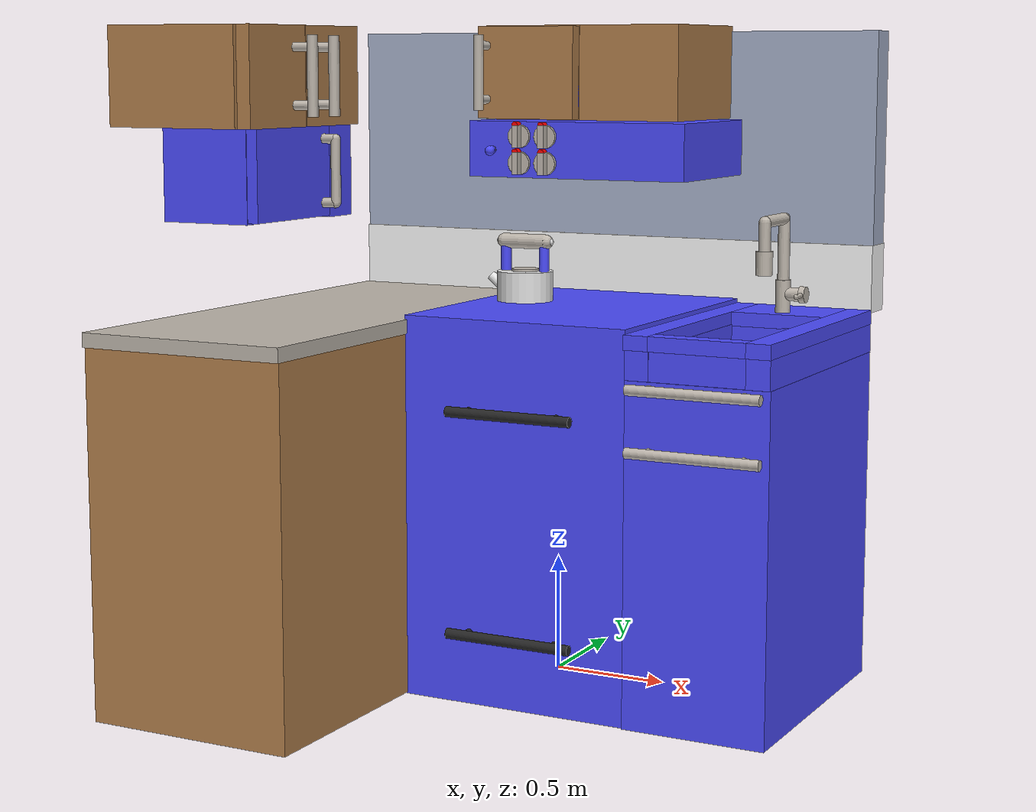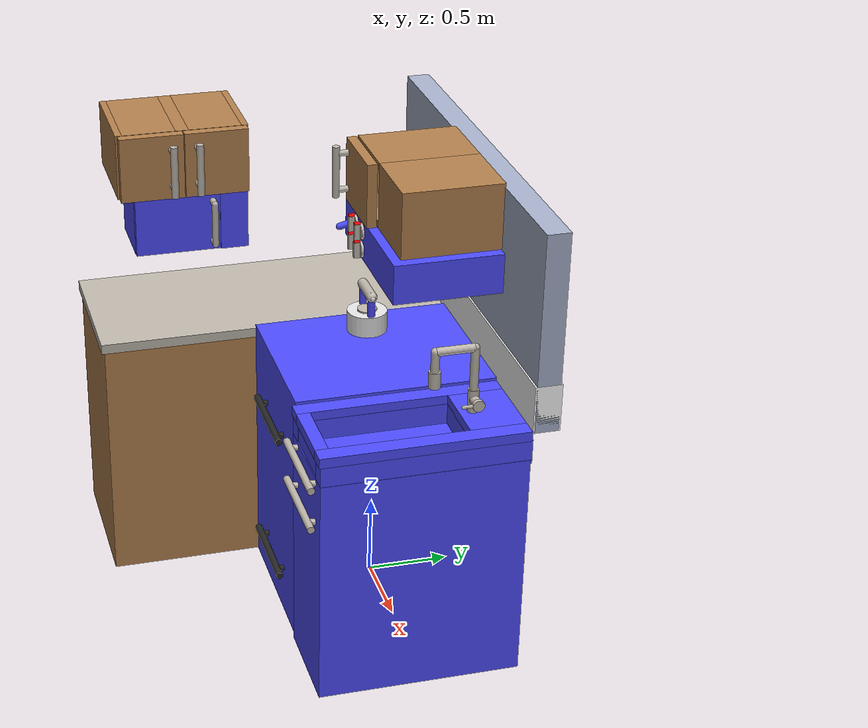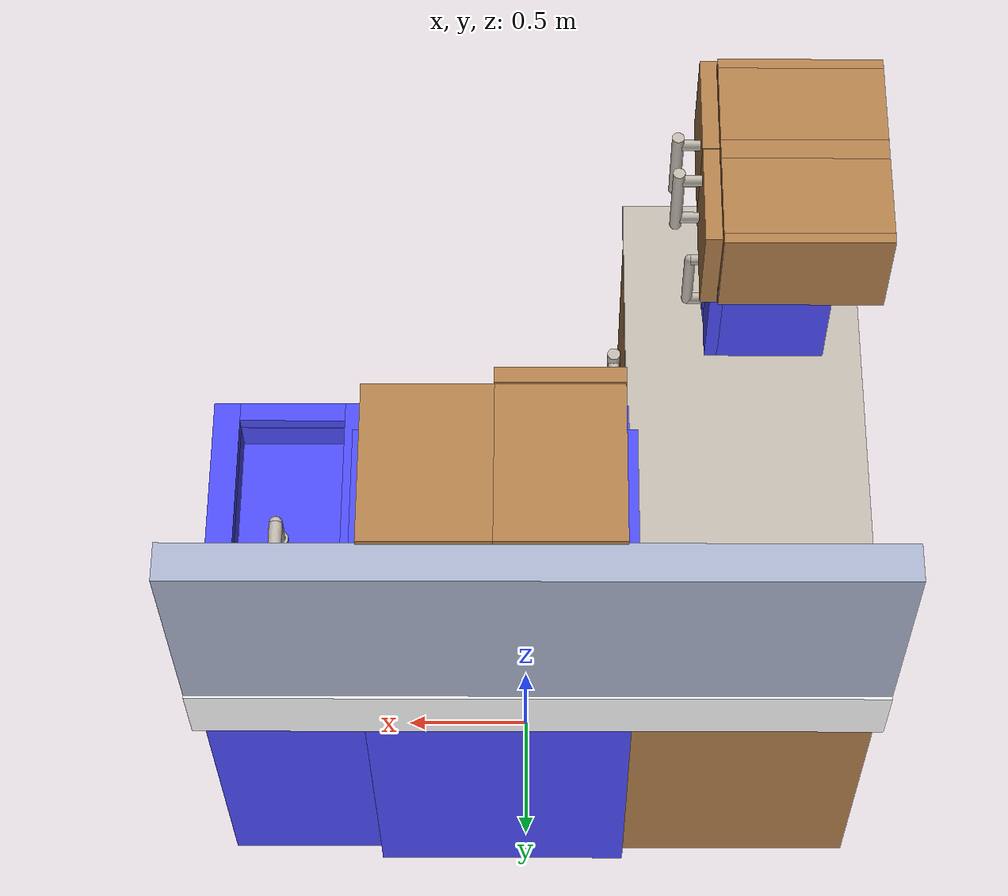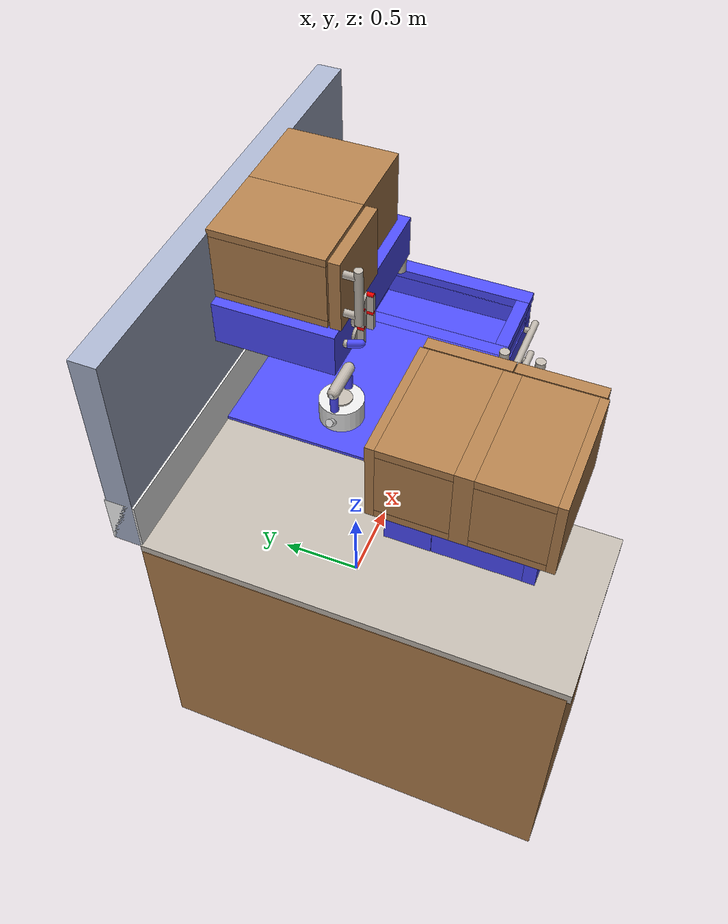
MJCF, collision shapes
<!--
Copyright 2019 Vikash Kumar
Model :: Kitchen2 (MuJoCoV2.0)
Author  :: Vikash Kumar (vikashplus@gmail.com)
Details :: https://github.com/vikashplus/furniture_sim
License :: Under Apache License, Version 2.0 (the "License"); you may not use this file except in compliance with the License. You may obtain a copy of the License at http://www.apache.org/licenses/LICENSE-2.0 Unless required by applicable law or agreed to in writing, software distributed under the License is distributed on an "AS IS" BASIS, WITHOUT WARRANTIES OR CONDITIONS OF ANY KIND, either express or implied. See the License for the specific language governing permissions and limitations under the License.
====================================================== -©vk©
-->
<mujoco model="kitchen">
    <compiler angle="radian" inertiafromgeom='auto' inertiagrouprange='4 5' meshdir='..' texturedir='..'/>
    <visual>
        <headlight diffuse=".9 .9 .9"/>
    </visual>
    <include file="../../furniture_sim/oven/oven_asset.xml"/>
    <include file="../../furniture_sim/counters/counters_asset.xml"/>
    <include file="../../furniture_sim/backwall/backwall_asset.xml"/>
    <include file="../../furniture_sim/slidecabinet/slidecabinet_asset.xml"/>
    <include file="../../furniture_sim/hingecabinet/hingecabinet_asset.xml"/>
    <include file="../../furniture_sim/microwave/microwave_asset.xml"/>
    <include file="../../furniture_sim/kettle/kettle_asset.xml"/>
    <worldbody>
        <body name="kitchen" pos="0 0 0">

            <body name="sink" pos="0 0 0">
                <include file="../../furniture_sim/counters/sink_counter_body.xml"/>
            </body>
            <body name="island" pos="0 0 0">
                <include file="../../furniture_sim/counters/box_counter_body.xml"/>
            </body>
            <body name="oven" pos="0 0 0">
                <include file="../../furniture_sim/oven/oven_body.xml"/>
            </body>
            <body name="backwall" pos="0 0 0">
                <include file="../../furniture_sim/backwall/backwall_body.xml"/>
            </body>
            <body name="slidecabinet" pos="0.098 0.28 2.61">
                <include file="../../furniture_sim/slidecabinet/slidecabinet_body.xml"/>
            </body>
            <body name="hingecabinet" pos="-1.0 -1.0 2.6" euler="0 0 1.57">
                <include file="../../furniture_sim/hingecabinet/hingecabinet_body.xml"/>
            </body>
            <body name="microwave" pos="-0.892 -0.96 2.025" euler="0 0 1.57">
                <include file="../../furniture_sim/microwave/microwave_body0.xml"/>
            </body>
        </body>
        <body name="kettle" pos="-0.169 0 1.626">
            <freejoint/>
            <include file="../../furniture_sim/kettle/kettle_body1.xml"/>
        </body>
    </worldbody>

</mujoco>

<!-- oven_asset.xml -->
<mujocoinclude>
    <compiler inertiafromgeom="auto" inertiagrouprange="4 4" angle="radian"/>

    <asset>
        <mesh file="../furniture_sim/oven/meshes/hood.stl" name="hood"/>
        <mesh file="../furniture_sim/oven/meshes/lightswitch.stl" name="lightswitch"/>
        <mesh file="../furniture_sim/oven/meshes/lightswitchbase.stl" name="lightswitchbase"/>
        <mesh file="../furniture_sim/oven/meshes/knob.stl" name="knob"/>
        <mesh file="../furniture_sim/oven/meshes/stoverim.stl" name="stoverim"/>
        <mesh file="../furniture_sim/oven/meshes/burnerplate.stl" name="burnerplate"/>
        <mesh file="../furniture_sim/oven/meshes/ovenhandle.stl" name="ovenhandle"/>
        <mesh file="../furniture_sim/oven/meshes/oven.stl" name="oven"/>
        <mesh file="../furniture_sim/oven/meshes/oventop.stl" name="oventop"/>
        <mesh file="../furniture_sim/oven/meshes/ovenwindow.stl" name="ovenwindow"/>

        <texture name="T_oven_wood" type="cube" height="1" width="1" file="../furniture_sim/common/textures/wood0.png"/>
        <texture name="T_oven_metal" type="cube" height="1" width="1" file="../furniture_sim/common/textures/metal0.png"/>

        <material name="oven_wood" texture="T_oven_wood" texrepeat="3 3" reflectance="0.7" shininess=".4" texuniform="false"/>
        <material name="oven_metal" rgba="1 1 1 1" texture="T_oven_metal" texrepeat="3 3" reflectance="1" shininess="1" texuniform="false"/>
        <material name="oven_black" rgba=".15 .15 .15 1" reflectance=".2" shininess=".2" />
        <material name="oven_burner" rgba="2 0 0 1" reflectance=".2" shininess=".2" />
        <material name="oven_block" rgba=".1 .1 .1 1"/>
        <material name="oven_collision_blue" rgba="0.3 0.3 1.0 0.5" shininess="0" specular="0"/>
    </asset>

    <default>
        <default class="oven">
            <joint armature="0.001" damping="2" limited="true"/>
            <geom conaffinity="0" contype="0" group="1" material="oven_metal" type="mesh"/>
            <light directional="false" castshadow="true" attenuation="0.03 0.03 0.03" cutoff="100" exponent="25" diffuse=".7 .65 .65" specular=".3 .3 .3"/>
            <default class="oven_collision">
                <geom conaffinity="1" condim="3" contype="0" group="4" margin="0.001" material="oven_collision_blue" type="mesh"/>
            </default>
        </default>
    </default>

    <equality>
        <joint polycoef="0 174 0 0 0" joint1="knob1_joint" joint2="burner1_joint"/>
        <joint polycoef="0 174 0 0 0" joint1="knob2_joint" joint2="burner2_joint"/>
        <joint polycoef="0 174 0 0 0" joint1="knob3_joint" joint2="burner3_joint"/>
        <joint polycoef="0 174 0 0 0" joint1="knob4_joint" joint2="burner4_joint"/>
        <joint polycoef="0 14 0 0 0" joint1="lightswitch_joint" joint2="light_joint"/>
    </equality>

    <sensor>
        <jointpos name='knob1_joint' joint= 'knob1_joint'/>
        <jointpos name='knob2_joint' joint= 'knob2_joint'/>
        <jointpos name='knob3_joint' joint= 'knob3_joint'/>
        <jointpos name='knob4_joint' joint= 'knob4_joint'/>
        <jointpos name='lightswitch_joint' joint= 'lightswitch_joint'/>
    </sensor>

</mujocoinclude>

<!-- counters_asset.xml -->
<mujocoinclude>
    <compiler inertiafromgeom="auto" inertiagrouprange="4 4" angle="radian"/>

    <asset>
        <mesh file="../furniture_sim/counters/meshes/cabinetdrawer.stl" name="cabinetdrawer"/>
        <mesh file="../furniture_sim/counters/meshes/cabinethandle.stl" name="cabinethandle"/>
        <mesh file="../furniture_sim/counters/meshes/cabinetbase.stl" name="cabinetbase"/>
        <mesh file="../furniture_sim/counters/meshes/countertop.stl" name="countertop"/>
        <mesh file="../furniture_sim/counters/meshes/faucet.stl" name="faucet"/>

        <texture name="T_counter_metal" type="cube" height="1" width="1" file="../furniture_sim/common/textures/metal0.png" />
        <texture name="T_counter_marble" type="cube" height="1" width="1" file="../furniture_sim/common/textures/stone2.png" />
        <texture name="T_counter_wood" type="cube" height="2" width="2" file="../furniture_sim/common/textures/wood1.png"/>

        <material name="counter_metal" rgba="1 1 1 1" texture="T_counter_metal" texrepeat="3 3" reflectance=".5" shininess="1" texuniform="false" />
        <material name="counter_marble"  texture="T_counter_marble" texrepeat="1 1" reflectance=".2" shininess="1" texuniform="false" />
        <material name="counter_black" rgba=".2 .2 .2 1" reflectance="1" shininess="1"  />
        <material name="counter_blue" texture="T_counter_wood" rgba="1 1 1 1" reflectance="1" shininess="1" texuniform="false"/>
        <material name="counter_collision_blue" rgba="0.3 0.3 1.0 0.5" shininess="0" specular="0" />

    </asset>

    <default>
        <default class="counters">
            <joint damping="2" frictionloss="2" armature=".01" limited="true"/>
            <geom conaffinity="0" contype="0" group="1" material="counter_metal" type="mesh"/>
            <default class="counter_collision">
                <geom conaffinity="1" condim="3" contype="0" group="4" margin="0.001" material="counter_collision_blue"/>
            </default>
        </default>
    </default>

</mujocoinclude>

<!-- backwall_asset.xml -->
<mujocoinclude>
    <compiler inertiafromgeom="auto" inertiagrouprange="4 4" angle="radian"/>

    <asset>
        <texture name="T_wall_marble" type="cube" height="1" width="1" file="../furniture_sim/common/textures/stone0.png"/>
        <texture name="T_wall_metal" type="cube" height="1" width="1" file="../furniture_sim/common/textures/metal0.png"/>

        <material name="wall_white" rgba="1 1 1 1" reflectance="0" shininess="0"/>
        <material name="wall_blue" rgba=".66 .7 .8 1" reflectance="0" shininess="0"/>
        <material name="wall_collision_blue" rgba="0.3 0.3 1.0 0.5" shininess="0" specular="0"/>
    </asset>

    <default>
        <default class="backwall">
            <geom conaffinity="0" contype="0" group="1" material="wall_blue"/>
            <default class="wall_collision">
                <geom conaffinity="1" condim="3" contype="0" group="4" margin="0.001" material="wall_collision_blue"/>
            </default>
        </default>
    </default>

</mujocoinclude>

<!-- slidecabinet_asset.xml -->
<mujocoinclude>
    <compiler inertiafromgeom="auto" inertiagrouprange="4 4" angle="radian"/>

    <asset>
        <texture name="T_slide_metal" type="cube" height="1" width="1" file="../furniture_sim/common/textures/metal0.png"/>
        <texture name="T_slide_wood" type="cube" height="1" width="1" file="../furniture_sim/common/textures/wood1.png"/>

        <material name="M_slide_metal" texture="T_slide_metal" texrepeat="3 3" reflectance="0.7" shininess=".4" texuniform="false"/>
        <material name="M_slide_blue" texture="T_slide_wood" rgba="1 1 1 1" reflectance="0.7" shininess=".4" texuniform="false"/>
        <material name="slide_collision_blue" rgba="0.3 0.3 1.0 0.5" shininess="0" specular="0"/>
    </asset>
    <default>
        <default class="slidecabinet">
            <joint damping="2" frictionloss="2" armature=".01" limited="true"/>
            <geom conaffinity="0" contype="0" group="1" material="M_slide_blue" type="mesh"/>
            <default class="slide_collision">
                <geom conaffinity="1" condim="3" contype="0" group="4" margin="0.001" material="slide_collision_blue"/>
            </default>
        </default>
    </default>

    <sensor>
        <jointpos name="slidedoor_joint" joint="slidedoor_joint"/>
    </sensor>

</mujocoinclude>

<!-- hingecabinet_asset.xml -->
<mujocoinclude>

    <compiler inertiafromgeom="auto" inertiagrouprange="4 4" angle="radian"/>

    <asset>
        <texture name="T_hinge_wood" type="cube" height="1" width="1" file="../furniture_sim/common/textures/wood1.png"/>
        <texture name="T_hinge_metal" type="cube" height="1" width="1" file="../furniture_sim/common/textures/metal0.png"/>

        <material name="M_hinge_wood" texture="T_hinge_wood" texrepeat="3 3" reflectance="0.7" shininess=".4" texuniform="false"/>
        <material name="M_hinge_metal" texture="T_hinge_metal" texrepeat="3 3" reflectance="0.7" shininess=".4" texuniform="false"/>
        <material name="M_hinge_blue" texture="T_hinge_wood" rgba="1 1 1 1" reflectance="0.7" shininess=".4" texuniform="false"/>
        <material name="hinge_collision_blue" rgba="0.3 0.3 1.0 0.5" shininess="0" specular="0"/>
    </asset>

    <default>
        <default class="hingecabinet">
            <joint damping="2" frictionloss="2" armature=".01" limited="true"/>
            <geom conaffinity="0" contype="0" group="1" material="M_hinge_wood" type="mesh"/>
            <default class="hinge_collision">
                <geom conaffinity="1" condim="3" contype="0" group="4" margin="0.001" material="hinge_collision_blue" solimp=".8 .9 .01" solref=".02 1"/>
            </default>
        </default>
    </default>

    <sensor>
        <jointpos name="leftdoorhinge" joint="leftdoorhinge"/>
        <jointpos name="rightdoorhinge" joint="rightdoorhinge"/>
    </sensor>

</mujocoinclude>

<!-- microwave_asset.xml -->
<mujocoinclude>
    <compiler inertiafromgeom="auto" inertiagrouprange="4 4" angle="radian"/>

    <asset>
        <mesh file="../furniture_sim/microwave/meshes/micro.stl" name="micro"/>
        <mesh file="../furniture_sim/microwave/meshes/microdoor.stl" name="microdoor"/>
        <mesh file="../furniture_sim/microwave/meshes/microbutton.stl" name="microbutton"/>
        <mesh file="../furniture_sim/microwave/meshes/microfeet.stl" name="microfeet"/>
        <mesh file="../furniture_sim/microwave/meshes/microhandle.stl" name="microhandle"/>
        <mesh file="../furniture_sim/microwave/meshes/microwindow.stl" name="microwindow"/>

        <texture name="T_micro_metal" type="cube" height="1" width="1" file="../furniture_sim/common/textures/metal0.png"/>

        <material name="micro_metal" rgba="1 1 1 1" texture="T_micro_metal" texrepeat="3 3" reflectance="1" shininess="1" texuniform="false"/>
        <material name="micro_black" rgba=".2 .2 .2 1" reflectance="1" shininess="1"/>
        <material name="micro_white" rgba=".8 .8 .82 1" reflectance="1" shininess="1"/>
        <material name="micro_window" rgba=".4 .4 .4 .25" reflectance="1" shininess="1"/>
        <material name="micro_collision_blue" rgba="0.3 0.3 1.0 0.5" shininess="0" specular="0"/>
    </asset>

    <default>
        <default class="microwave">
            <joint damping="2" frictionloss="2" armature=".01" limited="true"/>
            <geom conaffinity="0" contype="0" group="1" material="micro_black" type="mesh"/>
            <default class="micro_collision">
                <geom conaffinity="1" condim="3" contype="0" group="4" margin="0.001" material="micro_collision_blue" solimp=".8 .9 .01" solref=".02 1"/>
            </default>
        </default>
    </default>

    <sensor>
        <jointpos name="micro0joint" joint="micro0joint"/>
    </sensor>

</mujocoinclude>

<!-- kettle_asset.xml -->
<mujocoinclude>
    <compiler inertiafromgeom="auto" inertiagrouprange="4 4" angle="radian"/>

    <asset>
        <mesh file="../furniture_sim/kettle/meshes/kettle.stl" name="kettle"/>
        <mesh file="../furniture_sim/kettle/meshes/kettlehandle.stl" name="kettlehandle"/>

        <texture name="T_kettle_metal" type="cube" height="1" width="1" file="../furniture_sim/common/textures/metal0.png" />
        <texture name="T_kettle_wood" type="cube" height="1" width="1" file="../furniture_sim/common/textures/wood1.png" />

        <material name="kettle_wood" rgba="1 1 1 1" texture="T_kettle_wood" texrepeat="3 3" reflectance="1" shininess="1" texuniform="false" />
        <material name="kettle_metal" rgba="1 1 1 1" texture="T_kettle_metal" texrepeat="3 3" reflectance="1" shininess="1" texuniform="false" />
        <material name="kettle_Rmetal" rgba="1 .1 .1 1" texture="T_kettle_metal" texrepeat="3 3" reflectance="1" shininess="1" texuniform="false" />
        <material name="kettle_Bmetal" rgba=".1 .1 1 1" texture="T_kettle_metal" texrepeat="3 3" reflectance="1" shininess="1" texuniform="false" />
        <material name="kettle_white" rgba=".9 .9 .9 1" reflectance="1" shininess="1" />
        <material name="kettle_collision_blue" rgba="0.3 0.3 1.0 0.5" shininess="0" specular="0" />
    </asset>

    <default>
        <default class="kettle">
            <joint damping="2" frictionloss="2" armature=".01" limited="true" />
            <geom conaffinity="0" contype="0" group="1" material="kettle_white" type="mesh"/>
            <default class="kettle_collision">
                <geom conaffinity="1" condim="4" contype="1" group="4" margin="0.001" material="kettle_collision_blue" solimp=".8 .9 .01" solref=".02 1" type="mesh"/>
            </default>
        </default>
    </default>
</mujocoinclude>

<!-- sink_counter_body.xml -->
<mujocoinclude>
    <body name="sink_counter" childclass="counters">
        <geom material="counter_blue" mesh="cabinetbase"/>
        <geom material="counter_marble" mesh="countertop"/>
        <geom mesh="faucet" pos="0.904 -0.172 1.511"/>
        <geom pos="0.9 0.085 1.83" size="0.035 0.05" type="cylinder"/>
        <geom pos="0.9 0.085 1.92" size="0.025 0.08" type="capsule"/>
        <geom euler="1.57 0 0" pos="0.9 0.2 2" size="0.025 0.11" type="capsule"/>
        <geom pos="0.9 0.317 1.8" size="0.025 0.2" type="capsule"/>
        <geom pos="0.9 0.317 1.67" size="0.032 0.07" type="cylinder"/>
        <geom pos="0.947 0.318 1.68" euler="0 1.57 0" size="0.029 0.03" type="cylinder"/>
        <geom pos="0.99 0.318 1.68" euler="0 1.57 0" size="0.035 0.013 " type="cylinder"/>
        <geom euler="1.57 0 0" pos="0.99 0.26 1.68" size="0.01 0.03" type="capsule"/>
        <geom euler="0 1.57 0" pos="0.909 -0.695 1.39" size="0.022 0.28" type="cylinder"/>
        <geom euler="1.57 0 0" pos="0.71 -0.665 1.39" size="0.018 0.03" type="cylinder"/>
        <geom euler="1.57 0 0" pos="1.108 -0.665 1.39" size="0.018 0.03" type="cylinder"/>
        <geom euler="0 1.57 0" pos="0.909 -0.695 1.14" size="0.022 0.28" type="cylinder"/>
        <geom euler="1.57 0 0" pos="0.71 -0.665 1.14" size="0.018 0.03" type="cylinder"/>
        <geom euler="1.57 0 0" pos="1.108 -0.665 1.14" size="0.018 0.03" type="cylinder"/>

        <geom class="counter_collision" euler="0 1.57 0" pos="0.909 -0.695 1.39" size="0.022 0.28" type="cylinder" mass=".1"/>
        <geom class="counter_collision" euler="1.57 0 0" pos="0.71 -0.665 1.39" size="0.018 0.03" type="cylinder" mass=".02"/>
        <geom class="counter_collision" euler="1.57 0 0" pos="1.108 -0.665 1.39" size="0.018 0.03" type="cylinder" mass=".02"/>
        <geom class="counter_collision" euler="0 1.57 0" pos="0.909 -0.695 1.14" size="0.022 0.28" type="cylinder" mass=".1"/>
        <geom class="counter_collision" euler="1.57 0 0" pos="0.71 -0.665 1.14" size="0.018 0.03" type="cylinder" mass=".02"/>
        <geom class="counter_collision" euler="1.57 0 0" pos="1.108 -0.665 1.14" size="0.018 0.03" type="cylinder" mass=".02"/>
        <geom class="counter_collision" pos="0.907 -0.045 0.71" size="0.304 0.606 0.71" type="box" mass="3"/>
        <geom class="counter_collision" pos="1.159 -0.045 1.57" size="0.051 0.611 0.03" type="box" mass=".2"/>
        <geom class="counter_collision" pos="0.649 -0.045 1.57" size="0.051 0.611 0.03" type="box" mass=".2"/>
        <geom class="counter_collision" pos="0.904 0.4 1.57" size="0.204 0.165 0.03" type="box" mass=".2"/>
        <geom class="counter_collision" pos="0.904 -0.617 1.57" size="0.204 0.039 0.03" type="box" mass=".2"/>
        <geom class="counter_collision" pos="1.158 -0.04 1.47" size="0.05 0.61 0.076" type="box" mass=".2"/>
        <geom class="counter_collision" pos="0.652 -0.04 1.47" size="0.05 0.61 0.076" type="box" mass=".2"/>
        <geom class="counter_collision" pos="0.904 0.401 1.47" size="0.204 0.166 0.076" type="box" mass=".2"/>
        <geom class="counter_collision" pos="0.904 -0.611 1.47" size="0.206 0.034 0.076" type="box" mass=".2"/>
        <geom class="counter_collision" pos="0.9 0.085 1.83" size="0.035 0.05" type="cylinder" mass=".02"/>
        <geom class="counter_collision" pos="0.9 0.085 1.92" size="0.025 0.08" type="capsule" mass=".02"/>
        <geom class="counter_collision" euler="1.57 0 0" pos="0.9 0.2 2" size="0.025 0.11" type="capsule" mass=".02"/>
        <geom class="counter_collision" pos="0.9 0.317 1.8" size="0.025 0.2" type="capsule" mass=".02"/>
        <geom class="counter_collision" pos="0.9 0.317 1.67" size="0.032 0.07" type="cylinder" mass=".02"/>
        <geom class="counter_collision" pos="0.947 0.318 1.68" euler="0 1.57 0" size="0.029 0.03" type="cylinder" mass=".02"/>
        <geom class="counter_collision" pos="0.99 0.318 1.68" euler="0 1.57 0" size="0.035 0.013 " type="cylinder" mass=".02"/>
        <geom class="counter_collision" euler="1.57 0 0" pos="0.99 0.26 1.68" size="0.01 0.03" type="capsule" mass=".02"/>
    </body>
</mujocoinclude>

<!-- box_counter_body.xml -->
<mujocoinclude>
    <body name="box_counter" childclass="counters">
        <geom material="counter_marble" pos="-0.855 -0.508 1.57" size="0.463 1.08 0.03" type="box"/>
        <geom material="counter_blue" pos="-0.86 -0.5 0.78" size="0.46 1.07 0.777" type="box"/>

        <geom class="counter_collision" pos="-0.86 -0.5 0.78" size="0.46 1.07 0.777" type="box" mass="5"/>
        <geom class="counter_collision" pos="-0.855 -0.508 1.57" size="0.463 1.08 0.03" type="box" mass=".5"/>
    </body>
</mujocoinclude>

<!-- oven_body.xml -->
<mujocoinclude>
    <light class="oven" name="ovenlighta" pos="0 .2 2.5" dir="0 -.02 -.1" attenuation="0.05 0.05 0.05" cutoff="75" diffuse=".7 .65 .65" specular=".3 .3 .3"/>

    <body name="ovenroot" childclass="oven" pos="0.115 -0.2921 0.9834">
        <geom material="oven_black" mesh="burnerplate" pos="-0.24 -0.119 0.629"/>
        <geom material="oven_black" mesh="burnerplate" pos="-0.237 0.322 0.629"/>
        <geom material="oven_black" mesh="burnerplate" pos="0.204 0.322 0.629"/>
        <geom material="oven_black" mesh="burnerplate" pos="0.206 -0.119 0.629"/>
        <geom material="oven_black" euler="1.57 0 0" pos="-.215 -0.36 -0.682" size="0.018 0.03" type="cylinder"/>
        <geom material="oven_black" euler="1.57 0 0" pos=".184 -0.36 -0.682" size="0.018 0.03" type="cylinder"/>
        <geom material="oven_black" euler="0 1.57 0" pos="-0.015 -0.39 -0.682" size="0.022 0.28" type="cylinder"/>
        <geom material="oven_black" euler="1.57 0 0" pos="-.215 -0.36 0.254" size="0.018 0.03" type="cylinder"/>
        <geom material="oven_black" euler="1.57 0 0" pos=".184 -0.36 0.254" size="0.018 0.03" type="cylinder"/>
        <geom material="oven_black" euler="0 1.57 0" pos="-0.015 -0.39 0.254" size="0.022 0.28" type="cylinder"/>
        <geom material="oven_black" mesh="oventop" pos="-0.017 0.275 0.607"/>
        <geom material="oven_black" mesh="ovenwindow" pos="0.9793 0.2921 -1.1877"/>
        <geom material="oven_black" pos="-0.011 -.327 -.05" size="0.35 0.016 0.22" type="box"/>
        <geom mesh="stoverim" pos="0.203 0.323 0.619"/>
        <geom mesh="stoverim" pos="-0.24 -0.12 0.619"/>
        <geom mesh="stoverim" pos="-0.237 0.323 0.619"/>
        <geom mesh="stoverim" pos="0.207 -0.12 0.619"/>

        <geom mesh="oven" pos="-.115 .295 -.98"/>

        <geom class="oven_collision" pos="-0.017 0.28 -0.175" size="0.5 0.625 0.81" type="box" mass="5"/>
        <geom class="oven_collision" euler="1.57 0 0" pos="-.215 -0.36 -0.682" size="0.018 0.03" type="cylinder" mass=".2"/>
        <geom class="oven_collision" euler="1.57 0 0" pos=".184 -0.36 -0.682" size="0.018 0.03" type="cylinder" mass=".2"/>
        <geom class="oven_collision" euler="0 1.57 0" pos="-0.015 -0.39 -0.682" size="0.022 0.28" type="cylinder" mass=".2"/>
        <geom class="oven_collision" euler="1.57 0 0" pos="-.215 -0.36 0.254" size="0.018 0.03" type="cylinder" mass=".2"/>
        <geom class="oven_collision" euler="1.57 0 0" pos=".184 -0.36 0.254" size="0.018 0.03" type="cylinder" mass=".2"/>
        <geom class="oven_collision" euler="0 1.57 0" pos="-0.015 -0.39 0.254" size="0.022 0.28" type="cylinder" mass=".2"/>
        <body name="knob 1" euler="1.57 0 0" pos="-0.148 0.22 1.243">
            <joint name="knob1_joint" axis="0 0 1" type="hinge" limited="true" range="-1.57 0"/>
            <geom type="box" pos="0 0 .038" size=".014 .048 .018"/>
            <geom type="cylinder" pos="0 0 .013" size=".05 .008"/>
            <geom type="cylinder" pos="0 0.048 .037" size=".014 .018" rgba="1 0 0 1"/>

            <geom class="oven_collision" type="box" pos="0 0 .038" size=".014 .048 .018" mass=".01"/>
            <geom class="oven_collision" type="cylinder" pos="0 0 .013" size=".05 .008" mass=".01"/>
            <site type="sphere" name="knob1_site" pos="0 0 .038" size=".01" group="3" rgba="1 1 0 1"/>
        </body>
        <body name="Burner 1" pos="0.206 -0.119 0.61">
            <inertial pos="0 0 0" mass=".01" diaginertia="0.001 0.001 0.001"/>
            <joint name="burner1_joint" axis="0 0 -1" type="slide" limited="true" range="-.009 0"/>
            <geom material="oven_burner" size="0.1 0.01" type="cylinder"/>
        </body>
        <body name="knob 2" euler="1.57 0 0" pos="-0.271 0.22 1.243">
            <joint name="knob2_joint" axis="0 0 1" type="hinge" limited="true" range="-1.57 0"/>
            <geom type="box" pos="0 0 .038" size=".014 .048 .018"/>
            <geom type="cylinder" pos="0 0 .013" size=".05 .008"/>
            <geom type="cylinder" pos="0 0.048 .037" size=".014 .018" rgba="1 0 0 1"/>

            <geom class="oven_collision" type="box" pos="0 0 .038" size=".014 .048 .018" mass=".01"/>
            <geom class="oven_collision" type="cylinder" pos="0 0 .013" size=".05 .008" mass=".01"/>
            <site type="sphere" name="knob2_site" pos="0 0 .038" size=".01" group="3" rgba="0 0 1 1"/>
        </body>
        <body name="Burner 2" pos="-0.24 -0.119 0.61">
            <inertial pos="0 0 0" mass=".01" diaginertia="0.001 0.001 0.001"/>
            <joint name="burner2_joint" axis="0 0 -1" type="slide" limited="true" stiffness="1" range="-.009 0"/>
            <geom material="oven_burner" size="0.1 0.01" type="cylinder" group="1"/>
        </body>
        <body name="knob 3" euler="1.57 0 0" pos="-0.148 0.22 1.357">
            <joint name="knob3_joint" axis="0 0 1" type="hinge" limited="true" range="-1.57 0"/>
            <geom type="box" pos="0 0 .038" size=".014 .048 .018"/>
            <geom type="cylinder" pos="0 0 .013" size=".05 .008"/>
            <geom type="cylinder" pos="0 0.048 .037" size=".014 .018" rgba="1 0 0 1"/>

            <geom class="oven_collision" type="box" pos="0 0 .038" size=".014 .048 .018" mass=".01"/>
            <geom class="oven_collision" type="cylinder" pos="0 0 .013" size=".05 .008" mass=".01"/>
            <site type="sphere" name="knob3_site" pos="0 0 .038" size=".01" group="3" rgba="0 1 0 1"/>
        </body>
        <body name="Burner 3" pos="0.204 0.322 0.61">
            <inertial pos="0 0 0" mass=".01" diaginertia="0.001 0.001 0.001"/>
            <joint name="burner3_joint" axis="0 0 -1" type="slide" limited="true" stiffness="1" range="-.009 0"/>
            <geom material="oven_burner" size="0.1 0.01" type="cylinder" group="1"/>
        </body>
        <body name="knob 4" euler="1.57 0 0" pos="-0.271 0.22 1.357">
            <joint name="knob4_joint" axis="0 0 1" type="hinge" limited="true" range="-1.57 0"/>
            <geom type="box" pos="0 0 .038" size=".014 .048 .018"/>
            <geom type="cylinder" pos="0 0 .013" size=".05 .008"/>
            <geom type="cylinder" pos="0 0.048 .037" size=".014 .018" rgba="1 0 0 1"/>

            <geom class="oven_collision" type="box" pos="0 0 .038" size=".014 .048 .018" mass=".01"/>
            <geom class="oven_collision" type="cylinder" pos="0 0 .013" size=".05 .008" mass=".01"/>
            <site type="sphere" name="knob4_site" pos="0 0 .038" size=".01" group="3" rgba="1 0 0 1"/>
        </body>
        <body name="Burner 4" pos="-0.237 0.322 0.61">
            <inertial pos="0 0 0" mass=".01" diaginertia="0.001 0.001 0.001"/>
            <joint name="burner4_joint" axis="0 0 -1" type="slide" limited="true" stiffness="1" range="-.009 0"/>
            <geom material="oven_burner" size="0.1 0.01" type="cylinder" group="1"/>
        </body>
    </body>
    <body name="hoodroot" pos="0.1 0.188 2.33" childclass="oven">
        <geom material="oven_black" mesh="hood" pos="-0.1 -0.2896 -2.329"/>
        <geom class="oven_collision" pos="0 0.073 -0.046" size="0.502 0.336 0.12" type="box" mass="2"/>
        <body name="lightswitchbaseroot" pos="-0.4 -0.2473 -0.05" >
            <geom mesh="lightswitchbase" pos="0 -0.0123 0" euler="-1.57 0 0"/>
            <body name="lightswitchroot">
                <inertial pos="-0.0046 0.35 0.0131" mass=".1" diaginertia="0.001 0.001 0.001"/>
                <joint axis="0 0 1" limited="true" name="lightswitch_joint" frictionloss="1" range="-.7 0"/>
                <geom pos="0.0252 -0.06 0" euler="-1.57 -.4 0" size="0.02 0.035" type="capsule"/>
                <geom class="oven_collision" euler="-1.57 -.4 0" pos="0.0263 -0.065 0" size="0.021 0.03" type="capsule" mass=".01"/>
                <site type="sphere" name="light_site" pos="0.0315 -0.075 0" size=".01" group="3" rgba="1 0 0 1"/>
            </body>
        </body>
        <body name="lightblock_hinge" pos="-0.0044 -0.3 -0.1361">
            <inertial pos="-0.0046 0.35 0.0131" mass=".01" diaginertia="0.001 0.001 0.001"/>
            <joint axis="0 0 -1" type="slide" limited="true" name="light_joint" frictionloss="1" range="-.05 0"/>
            <geom material="oven_block" pos="-0.008 0.4 -0.01" size="0.4 0.3 0.015" type="box"/>
        </body>
    </body>
</mujocoinclude>

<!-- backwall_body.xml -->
<mujocoinclude>
    <body name="wallroot" childclass="backwall" pos="0.059 0.584 1.587">
        <geom pos="-.11 0.06 .6" size="1.26 0.07 0.6" type="box"/>
        <geom material="wall_white" pos="-0.11 0.06 0.145" size="1.26 0.08 0.145" type="box"/>

        <geom class="wall_collision" pos="-.11 0.06 .6" size="1.26 0.07 0.6" type="box" mass=".2"/>
        <geom class="wall_collision" pos="-0.11 0.06 0.145" size="1.26 0.08 0.145" type="box" mass=".2"/>
    </body>
</mujocoinclude>

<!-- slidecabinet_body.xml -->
<mujocoinclude>
    <body name="slide" childclass="slidecabinet">
        <geom pos="-0.225 0 -0.18" size="0.223 0.3 0.02" type="box"/>
        <geom pos="0.224 0 0" size="0.226 0.3 0.2" type="box"/>
        <geom pos="-0.225 0 0.18" size="0.223 0.3 0.02" type="box"/>
        <geom pos="-0.426 0 0" size="0.022 0.3 0.16" type="box"/>
        <geom pos="-0.2 0.276 0.0" size="0.21 0.024 0.16" type="box"/>

        <geom class="slide_collision" pos="-0.225 0 -0.18" size="0.223 0.3 0.02" type="box" mass=".2"/>
        <geom class="slide_collision" pos="0.224 0 0" size="0.226 0.3 0.2" type="box" mass="1"/>
        <geom class="slide_collision" pos="-0.225 0 0.18" size="0.223 0.3 0.02" type="box" mass=".2"/>
        <geom class="slide_collision" pos="-0.426 0 0" size="0.022 0.3 0.16" type="box" mass=".2"/>
        <geom class="slide_collision" pos="-0.2 0.276 0" size="0.2 0.024 0.16" type="box" mass=".2"/>
        <body name="slidelink" pos="-0.225 -0.32 0">
            <joint name="slidedoor_joint" axis="1 0 0" type="slide" range="0 .44"/>
            <geom material="M_slide_metal" euler="1.57 0 0" pos="-0.183 -0.06 -0.114" size="0.019 0.053 0.019" type="cylinder"/>
            <geom material="M_slide_metal" euler="1.57 0 0" pos="-0.183 -0.06 0.114" size="0.019 0.053 0.019" type="cylinder"/>
            <geom material="M_slide_metal" pos="-0.183 -0.123 0" size="0.022 0.159" type="cylinder"/>
            <geom pos="0 -.02 0" size="0.225 0.03 0.195" type="box"/>

            <geom class="slide_collision" pos="0 -.02 0" size="0.225 0.03 0.195" type="box" mass=".2"/>
            <geom class="slide_collision" euler="1.57 0 0" pos="-0.183 -0.06 -0.114" size="0.019 0.053 0.019" type="cylinder" mass=".02"/>
            <geom class="slide_collision" euler="1.57 0 0" pos="-0.183 -0.06 0.114" size="0.019 0.053 0.019" type="cylinder" mass=".02"/>
            <geom class="slide_collision" pos="-0.183 -0.123 0" size="0.022 0.159" type="cylinder" mass=".1"/>
            <site type="sphere" name="slide_site" pos="-0.183 -0.123 0" size=".01" group="3"/>
        </body>
    </body>
</mujocoinclude>

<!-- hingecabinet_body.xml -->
<mujocoinclude>
    <body name="hingecab" childclass="hingecabinet">
        <geom material="M_hinge_blue" size="0.04 0.3 0.2" type="box"/>
        <geom material="M_hinge_blue" pos="0.38 0 0" size="0.02 0.3 0.2" type="box"/>
        <geom material="M_hinge_blue" pos="-0.38 0 0" size="0.02 0.3 0.2" type="box"/>
        <geom material="M_hinge_blue" pos="-0.2 0 0.18" size="0.16 0.3 0.02" type="box"/>
        <geom material="M_hinge_blue" pos="-0.2 0 -0.18" size="0.16 0.3 0.02" type="box"/>
        <geom material="M_hinge_blue" pos="0.2 0 -0.18" size="0.16 0.3 0.02" type="box"/>
        <geom material="M_hinge_blue" pos="0.2 0 0.18" size="0.16 0.3 0.02" type="box"/>
        <geom material="M_hinge_blue" pos="-0.2 0.28 0" size="0.16 0.02 0.16" type="box"/>
        <geom material="M_hinge_blue" pos="0.2 0.28 0" size="0.16 0.02 0.16" type="box"/>

        <geom class="hinge_collision" size="0.04 0.3 0.2" type="box" mass=".3"/>
        <geom class="hinge_collision" pos="0.38 0 0" size="0.02 0.3 0.2" type="box" mass=".2"/>
        <geom class="hinge_collision" pos="-0.38 0 0" size="0.02 0.3 0.2" type="box" mass=".2"/>
        <geom class="hinge_collision" pos="-0.2 0 0.18" size="0.16 0.3 0.02" type="box" mass=".2"/>
        <geom class="hinge_collision" pos="-0.2 0 -0.18" size="0.16 0.3 0.02" type="box" mass=".2"/>
        <geom class="hinge_collision" pos="0.2 0 -0.18" size="0.16 0.3 0.02" type="box" mass=".2"/>
        <geom class="hinge_collision" pos="0.2 0 0.18" size="0.16 0.3 0.02" type="box" mass=".2"/>
        <geom class="hinge_collision" pos="-0.2 0.28 0" size="0.16 0.02 0.16" type="box" mass=".2"/>
        <geom class="hinge_collision" pos="0.2 0.28 0" size="0.16 0.02 0.16" type="box" mass=".2"/>
        <body name="hingeleftdoor" pos="-0.38 -0.32 0">
            <joint axis="0 0 1" name="leftdoorhinge" range="-1.57 0"/>
            <geom material="M_hinge_metal" pos="0.302 -0.128 0" size="0.022 0.16" type="cylinder"/>
            <geom material="M_hinge_metal" pos="0.302 -0.061 0.114" euler="1.57 0 0" size="0.019 0.053 0.02" type="cylinder"/>
            <geom material="M_hinge_metal" pos="0.302 -0.061 -0.114" euler="1.57 0 0" size="0.019 0.053 0.02" type="cylinder"/>
            <geom material="M_hinge_blue" pos="0.184 -.015 0" size="0.193 0.03 0.2" type="box"/>

            <geom class="hinge_collision" pos="0.184 -.015 0" size="0.193 0.03 0.2" type="box" mass=".2"/>
            <geom class="hinge_collision" pos="0.302 -0.128 0" size="0.022 0.16" type="cylinder" mass=".1"/>
            <geom class="hinge_collision" pos="0.302 -0.061 0.114" euler="1.57 0 0" size="0.019 0.053 0.02" type="cylinder" mass=".02"/>
            <geom class="hinge_collision" pos="0.302 -0.061 -0.114" euler="1.57 0 0" size="0.019 0.053 0.02" type="cylinder" mass=".02"/>
            <site type="sphere" name="leftdoor_site" pos="0.302 -0.128 0" size=".01" group="3" rgba="1 0 0 1"/>
        </body>
        <body name="hingerightdoor" pos="0.38 -0.32 0">
            <joint axis="0 0 1" name="rightdoorhinge" range="0 1.57"/>
            <geom material="M_hinge_blue" pos="-0.185 -.015 0" size="0.193 0.03 0.2" type="box"/>
            <geom material="M_hinge_metal" pos="-0.302 -0.128 0" size="0.022 0.16" type="cylinder"/>
            <geom material="M_hinge_metal" pos="-0.302 -0.061 -0.114" euler="1.57 0 0" size="0.019 0.053 0.02" type="cylinder"/>
            <geom material="M_hinge_metal" pos="-0.302 -0.061 0.114" euler="1.57 0 0" size="0.019 0.053 0.02" type="cylinder"/>

            <geom class="hinge_collision" pos="-0.302 -0.128 0" size="0.022 0.16" type="cylinder" mass=".1"/>
            <geom class="hinge_collision" pos="-0.302 -0.061 -0.114" euler="1.57 0 0" size="0.019 0.053 0.02" type="cylinder" mass=".02"/>
            <geom class="hinge_collision" pos="-0.302 -0.061 0.114" euler="1.57 0 0" size="0.019 0.053 0.02" type="cylinder" mass=".02"/>
            <geom class="hinge_collision" pos="-0.185 -.015 0" size="0.193 0.03 0.2" type="box" mass=".2"/>
            <site type="sphere" name="rightdoor_site" pos="-0.302 -0.128 0" size=".01" group="3" rgba="0 1 0 1"/>
        </body>
    </body>
</mujocoinclude>

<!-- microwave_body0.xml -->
<mujocoinclude>
    <body name="microroot" childclass="microwave">
        <geom mesh="micro"/>
        <geom material="micro_metal" mesh="microbutton"/>
        <geom material="micro_metal" mesh="microfeet"/>

        <geom class="micro_collision" pos="-0.316 0.023 0.187" size="0.029 0.199 0.187" type="box" mass=".5"/>
        <geom class="micro_collision" pos="0.236 0.023 0.187" size="0.109 0.199 0.187" type="box" mass=".5"/>
        <geom class="micro_collision" pos="-0.081 0.191 0.187" size="0.207 0.03 0.187" type="box" mass=".5"/>
        <geom class="micro_collision" pos="-0.08 -0.007 0.355" size="0.207 0.169 0.019" type="box" mass=".5"/>
        <geom class="micro_collision" pos="-0.08 -0.008 0.024" size="0.207 0.168 0.024" type="box" mass=".5"/>
        <geom class="micro_collision" pos="0.26 -0.197 0.187" size="0.085 0.024 0.187" type="box" mass=".5"/>
        <body name="microdoorroot" pos="-0.345 -0.176 0.192">
            <joint axis="0 0 1" limited="true" name="micro0joint" range="-2.094 0"/>
            <geom mesh="microdoor" pos="0.345 0.176 -0.192"/>
            <geom material="micro_window" mesh="microwindow" pos="0.345 0.176 -0.192"/>
            <geom material="micro_metal" pos="0.475 -0.108 0" size="0.02 0.13" type="capsule"/>
            <geom material="micro_metal" euler="1.57 0 0" pos="0.475 -0.075 .13" size="0.02 0.03" type="capsule"/>
            <geom material="micro_metal" euler="1.57 0 0" pos="0.475 -0.075 -.13" size="0.02 0.03" type="capsule"/>

            <geom class="micro_collision" pos="0.475 -0.108 0" size="0.02 0.13" type="capsule" mass="0.020"/>
            <geom class="micro_collision" euler="1.57 0 0" pos="0.475 -0.075 .13" size="0.02 0.03" type="capsule" mass="0.020"/>
            <geom class="micro_collision" euler="1.57 0 0" pos="0.475 -0.075 -.13" size="0.02 0.03" type="capsule" mass="0.020"/>
            <geom class="micro_collision" pos="0.259 -0.026 0" size="0.259 0.024 0.185" type="box" mass="0.20"/>
            <site type="sphere" name="microhandle_site" pos="0.475 -0.108 0" size=".01" group="3" rgba="1 1 0 1"/>
        </body>
    </body>
</mujocoinclude>

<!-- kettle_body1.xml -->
<mujocoinclude>

    <body name="kettleroot1" childclass="kettle">
        <geom pos="0 0 0.065" size="0.122 0.065" type="cylinder"/>
        <geom material="kettle_metal" euler="0 1.57 0" pos="0 0 0.259" size="0.032 0.1" type="capsule"/>
        <geom material="kettle_metal" euler="0 0 0" pos="0 0 0.13" size="0.06 .01" type="cylinder"/>
        <geom euler="0 1.57 0" pos="0 0 0.259" size="0.02 0.115" type="capsule"/>
        <geom pos="0.092 0 0.186" size="0.02 0.07" type="capsule"/>
        <geom pos="-0.092 0 0.185" size="0.02 0.07" type="capsule"/>
        <geom material="kettle_metal" pos="-0.092 0 0.22" size="0.022 0.015" type="capsule"/>
        <geom material="kettle_metal" pos="0.092 0 0.22" size="0.022 0.015" type="capsule"/>
        <geom euler="0 2.25 0" pos="-0.126 0 0.07" size="0.021 0.05" type="cylinder"/>

        <geom class="kettle_collision" euler="0 1.57 0" pos="0 0 0.259" size="0.032 0.1" type="capsule" mass='.02'/>
        <geom class="kettle_collision" pos="0.092 0 0.18" size="0.023 0.06" type="capsule" mass='.02'/>
        <geom class="kettle_collision" pos="-0.092 0 0.18" size="0.023 0.06" type="capsule" mass='.02'/>
        <geom class="kettle_collision" euler="0 2.25 0" pos="-0.126 0 0.07" size="0.021 0.05" type="cylinder" mass='.02'/>
        <geom class="kettle_collision" pos="0 0 0.065" size="0.122 0.065" type="cylinder" mass='.8'/>
        <site type="sphere" name="kettle_site1" pos="0 0 0.259" size=".01" group="3" rgba="1 0 0 1"/>
    </body>
</mujocoinclude>
